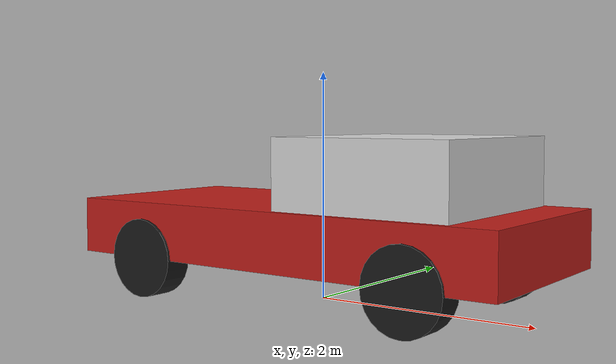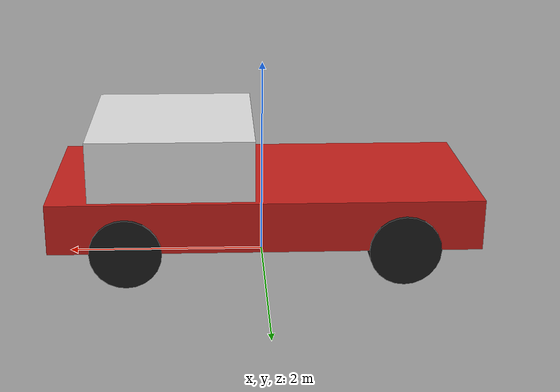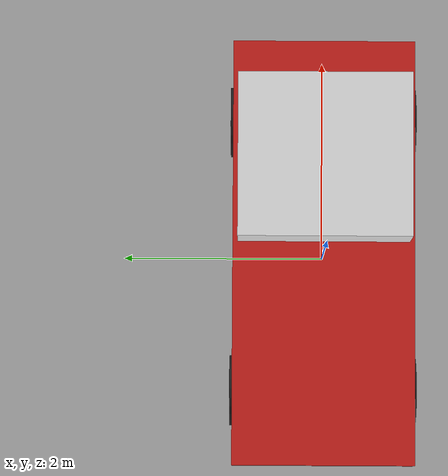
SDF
<?xml version="1.0" ?>
<sdf version="1.9">
  <model name="adair_ugv">
    <link name="base_link">
      <pose relative_to="__model__">0 0 0.35 0 0 0</pose>
      <inertial>
        <pose>0 0 0.1 0 0 0</pose>
        <mass>1500.0</mass>
        <inertia>
          <ixx>450</ixx><ixy>0</ixy><ixz>0</ixz>
          <iyy>2250</iyy><iyz>0</iyz>
          <izz>2610</izz>
        </inertia>
      </inertial>
      <visual name="body_visual">
        <pose>0 0 0.25 0 0 0</pose>
        <geometry><box><size>4.2 1.8 0.5</size></box></geometry>
        <material><diffuse>0.75 0.12 0.10 1</diffuse><specular>0.3 0.3 0.3 1</specular></material>
      </visual>
      <visual name="cab_visual">
        <pose>0.9 0 0.8 0 0 0</pose>
        <geometry><box><size>1.6 1.7 0.6</size></box></geometry>
        <material><diffuse>0.85 0.85 0.85 1</diffuse><specular>0.3 0.3 0.3 1</specular></material>
      </visual>
      <collision name="body_collision">
        <pose>0 0 0.25 0 0 0</pose>
        <geometry><box><size>4.2 1.8 0.5</size></box></geometry>
      </collision>

      <!-- 센서 (rover_ackermann 과 같은 설정) -->
      <sensor name="air_pressure_sensor" type="air_pressure">
        <always_on>1</always_on>
        <update_rate>50</update_rate>
        <air_pressure>
          <pressure><noise type="gaussian"><mean>0</mean><stddev>3</stddev></noise></pressure>
        </air_pressure>
      </sensor>
      <sensor name="magnetometer_sensor" type="magnetometer">
        <always_on>1</always_on>
        <update_rate>100</update_rate>
        <magnetometer>
          <x><noise type="gaussian"><stddev>0.0001</stddev></noise></x>
          <y><noise type="gaussian"><stddev>0.0001</stddev></noise></y>
          <z><noise type="gaussian"><stddev>0.0001</stddev></noise></z>
        </magnetometer>
      </sensor>
      <sensor name="imu_sensor" type="imu">
        <always_on>1</always_on>
        <update_rate>250</update_rate>
        <imu>
          <angular_velocity>
            <x><noise type="gaussian"><mean>0.0</mean><stddev>0.0008726646</stddev></noise></x>
            <y><noise type="gaussian"><mean>0.0</mean><stddev>0.0008726646</stddev></noise></y>
            <z><noise type="gaussian"><mean>0.0</mean><stddev>0.0008726646</stddev></noise></z>
          </angular_velocity>
          <linear_acceleration>
            <x><noise type="gaussian"><mean>0.0</mean><stddev>0.00637</stddev></noise></x>
            <y><noise type="gaussian"><mean>0.0</mean><stddev>0.00637</stddev></noise></y>
            <z><noise type="gaussian"><mean>0.0</mean><stddev>0.00686</stddev></noise></z>
          </linear_acceleration>
        </imu>
      </sensor>
      <sensor name="navsat_sensor" type="navsat">
        <always_on>1</always_on>
        <update_rate>30</update_rate>
      </sensor>
    </link>

    <!-- 뒷바퀴 -->
    <link name="wheel_rear_left_link">
      <pose relative_to="base_link">-1.35 0.8 0 -1.5707963 0 0</pose>
      <inertial>
        <mass>25.0</mass>
        <inertia><ixx>0.896</ixx><ixy>0</ixy><ixz>0</ixz><iyy>0.896</iyy><iyz>0</iyz><izz>1.531</izz></inertia>
      </inertial>
      <visual name="visual">
        <geometry><cylinder><radius>0.35</radius><length>0.25</length></cylinder></geometry>
        <material><diffuse>0.1 0.1 0.1 1</diffuse></material>
      </visual>
      <collision name="collision">
        <geometry><cylinder><radius>0.35</radius><length>0.25</length></cylinder></geometry>
        <surface><friction><ode><mu>1.0</mu><mu2>1.0</mu2><fdir1>1 0 0</fdir1></ode></friction></surface>
      </collision>
    </link>
    <link name="wheel_rear_right_link">
      <pose relative_to="base_link">-1.35 -0.8 0 -1.5707963 0 0</pose>
      <inertial>
        <mass>25.0</mass>
        <inertia><ixx>0.896</ixx><ixy>0</ixy><ixz>0</ixz><iyy>0.896</iyy><iyz>0</iyz><izz>1.531</izz></inertia>
      </inertial>
      <visual name="visual">
        <geometry><cylinder><radius>0.35</radius><length>0.25</length></cylinder></geometry>
        <material><diffuse>0.1 0.1 0.1 1</diffuse></material>
      </visual>
      <collision name="collision">
        <geometry><cylinder><radius>0.35</radius><length>0.25</length></cylinder></geometry>
        <surface><friction><ode><mu>1.0</mu><mu2>1.0</mu2><fdir1>1 0 0</fdir1></ode></friction></surface>
      </collision>
    </link>

    <!-- 앞바퀴: 조향 링크(차체 기준 z축 회전) → 바퀴 링크(y축 회전) -->
    <link name="wheel_front_left_steering_link">
      <pose relative_to="base_link">1.35 0.8 0 0 0 0</pose>
      <inertial>
        <mass>2.0</mass>
        <inertia><ixx>0.01</ixx><ixy>0</ixy><ixz>0</ixz><iyy>0.01</iyy><iyz>0</iyz><izz>0.01</izz></inertia>
      </inertial>
    </link>
    <link name="wheel_front_right_steering_link">
      <pose relative_to="base_link">1.35 -0.8 0 0 0 0</pose>
      <inertial>
        <mass>2.0</mass>
        <inertia><ixx>0.01</ixx><ixy>0</ixy><ixz>0</ixz><iyy>0.01</iyy><iyz>0</iyz><izz>0.01</izz></inertia>
      </inertial>
    </link>
    <link name="wheel_front_left_link">
      <pose relative_to="base_link">1.35 0.8 0 -1.5707963 0 0</pose>
      <inertial>
        <mass>25.0</mass>
        <inertia><ixx>0.896</ixx><ixy>0</ixy><ixz>0</ixz><iyy>0.896</iyy><iyz>0</iyz><izz>1.531</izz></inertia>
      </inertial>
      <visual name="visual">
        <geometry><cylinder><radius>0.35</radius><length>0.25</length></cylinder></geometry>
        <material><diffuse>0.1 0.1 0.1 1</diffuse></material>
      </visual>
      <collision name="collision">
        <geometry><cylinder><radius>0.35</radius><length>0.25</length></cylinder></geometry>
        <surface><friction><ode><mu>1.0</mu><mu2>1.0</mu2><fdir1>1 0 0</fdir1></ode></friction></surface>
      </collision>
    </link>
    <link name="wheel_front_right_link">
      <pose relative_to="base_link">1.35 -0.8 0 -1.5707963 0 0</pose>
      <inertial>
        <mass>25.0</mass>
        <inertia><ixx>0.896</ixx><ixy>0</ixy><ixz>0</ixz><iyy>0.896</iyy><iyz>0</iyz><izz>1.531</izz></inertia>
      </inertial>
      <visual name="visual">
        <geometry><cylinder><radius>0.35</radius><length>0.25</length></cylinder></geometry>
        <material><diffuse>0.1 0.1 0.1 1</diffuse></material>
      </visual>
      <collision name="collision">
        <geometry><cylinder><radius>0.35</radius><length>0.25</length></cylinder></geometry>
        <surface><friction><ode><mu>1.0</mu><mu2>1.0</mu2><fdir1>1 0 0</fdir1></ode></friction></surface>
      </collision>
    </link>

    <!-- 관절 -->
    <joint name="wheel_rear_left_joint" type="revolute">
      <parent>base_link</parent>
      <child>wheel_rear_left_link</child>
      <axis><xyz expressed_in="__model__">0 1 0</xyz></axis>
    </joint>
    <joint name="wheel_rear_right_joint" type="revolute">
      <parent>base_link</parent>
      <child>wheel_rear_right_link</child>
      <axis><xyz expressed_in="__model__">0 1 0</xyz></axis>
    </joint>
    <joint name="wheel_front_left_steering_joint" type="revolute">
      <parent>base_link</parent>
      <child>wheel_front_left_steering_link</child>
      <axis>
        <xyz expressed_in="__model__">0 0 1</xyz>
        <limit><lower>-0.5236</lower><upper>0.5236</upper><effort>1e6</effort></limit>
      </axis>
    </joint>
    <joint name="wheel_front_right_steering_joint" type="revolute">
      <parent>base_link</parent>
      <child>wheel_front_right_steering_link</child>
      <axis>
        <xyz expressed_in="__model__">0 0 1</xyz>
        <limit><lower>-0.5236</lower><upper>0.5236</upper><effort>1e6</effort></limit>
      </axis>
    </joint>
    <joint name="wheel_front_left_joint" type="revolute">
      <parent>wheel_front_left_steering_link</parent>
      <child>wheel_front_left_link</child>
      <axis><xyz expressed_in="__model__">0 1 0</xyz></axis>
    </joint>
    <joint name="wheel_front_right_joint" type="revolute">
      <parent>wheel_front_right_steering_link</parent>
      <child>wheel_front_right_link</child>
      <axis><xyz expressed_in="__model__">0 1 0</xyz></axis>
    </joint>

    <!-- 바퀴 속도: PX4 가 보내는 actuator 0 (rad/s) 을 네 바퀴에 그대로 -->
    <plugin filename="gz-sim-joint-controller-system" name="gz::sim::systems::JointController">
      <joint_name>wheel_rear_left_joint</joint_name>
      <sub_topic>command/motor_speed</sub_topic>
      <control_type>velocity</control_type>
      <use_actuator_msg>true</use_actuator_msg>
      <actuator_number>0</actuator_number>
    </plugin>
    <plugin filename="gz-sim-joint-controller-system" name="gz::sim::systems::JointController">
      <joint_name>wheel_rear_right_joint</joint_name>
      <sub_topic>command/motor_speed</sub_topic>
      <control_type>velocity</control_type>
      <use_actuator_msg>true</use_actuator_msg>
      <actuator_number>0</actuator_number>
    </plugin>
    <plugin filename="gz-sim-joint-controller-system" name="gz::sim::systems::JointController">
      <joint_name>wheel_front_left_joint</joint_name>
      <sub_topic>command/motor_speed</sub_topic>
      <control_type>velocity</control_type>
      <use_actuator_msg>true</use_actuator_msg>
      <actuator_number>0</actuator_number>
    </plugin>
    <plugin filename="gz-sim-joint-controller-system" name="gz::sim::systems::JointController">
      <joint_name>wheel_front_right_joint</joint_name>
      <sub_topic>command/motor_speed</sub_topic>
      <control_type>velocity</control_type>
      <use_actuator_msg>true</use_actuator_msg>
      <actuator_number>0</actuator_number>
    </plugin>

    <!-- 조향: PX4 servo_0 (rad). 속도 명령 방식이라 바퀴 질량에 관계없이 진동 없이 따라간다. 조향 속도 상한 2 rad/s -->
    <plugin filename="gz-sim-joint-position-controller-system" name="gz::sim::systems::JointPositionController">
      <joint_name>wheel_front_left_steering_joint</joint_name>
      <sub_topic>servo_0</sub_topic>
      <use_velocity_commands>true</use_velocity_commands>
      <p_gain>15</p_gain>
      <i_gain>0</i_gain>
      <d_gain>0</d_gain>
      <cmd_max>2.0</cmd_max>
      <cmd_min>-2.0</cmd_min>
    </plugin>
    <plugin filename="gz-sim-joint-position-controller-system" name="gz::sim::systems::JointPositionController">
      <joint_name>wheel_front_right_steering_joint</joint_name>
      <sub_topic>servo_0</sub_topic>
      <use_velocity_commands>true</use_velocity_commands>
      <p_gain>15</p_gain>
      <i_gain>0</i_gain>
      <d_gain>0</d_gain>
      <cmd_max>2.0</cmd_max>
      <cmd_min>-2.0</cmd_min>
    </plugin>

    <plugin filename="gz-sim-joint-state-publisher-system" name="gz::sim::systems::JointStatePublisher">
      <joint_name>wheel_rear_left_joint</joint_name>
      <joint_name>wheel_rear_right_joint</joint_name>
      <joint_name>wheel_front_left_joint</joint_name>
      <joint_name>wheel_front_right_joint</joint_name>
      <joint_name>wheel_front_left_steering_joint</joint_name>
      <joint_name>wheel_front_right_steering_joint</joint_name>
    </plugin>
  </model>
</sdf>
